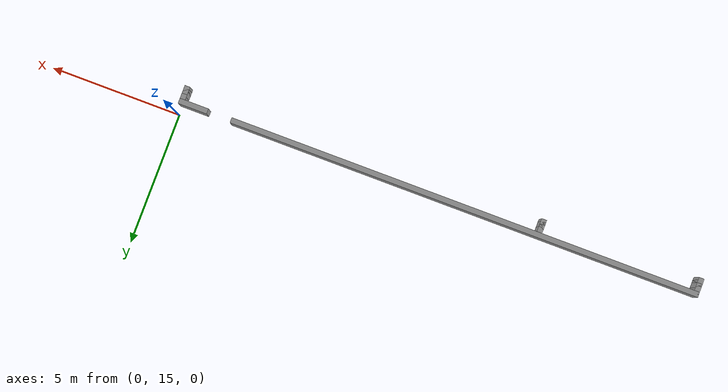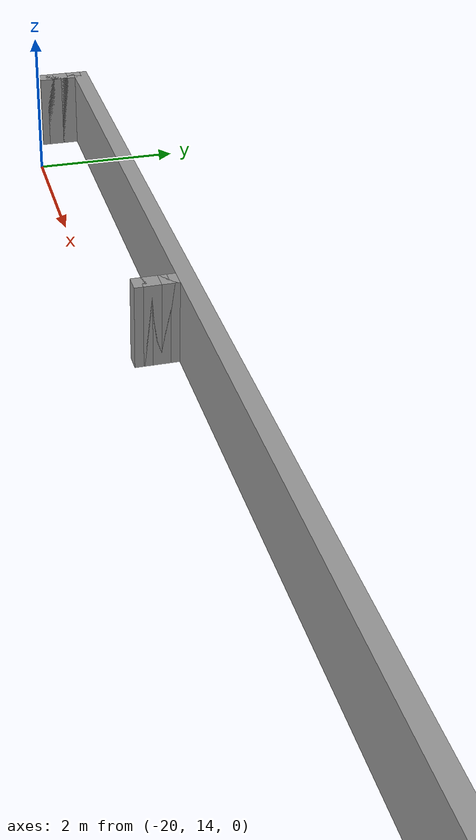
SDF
<sdf version="1.6">
 <world name="GridMap">
  <model name="GridMap">
   <link name="Wall_(1.0,141.0)">
    <collision name="Wall_(1.0,141.0)_Collision">
     <geometry><box><size>0.2 0.2 1.0</size></box></geometry>
     <pose>-0.1 14.1 0.5 0 -0 0</pose>
    </collision>
    <visual name="Wall_(1.0,141.0)_Visual">
     <geometry><box><size>0.2 0.2 1.0</size></box></geometry>
     <pose>-0.1 14.1 0.5 0 -0 0</pose>
     <material>
      <script><uri>file://media/materials/scripts/gazebo.material</uri><name>Gazebo/Grey</name></script>
      <ambient>1 1 1 1</ambient>
     </material>
     <meta><layer>0</layer></meta>
    </visual>
    <pose>0 0 0.5 0 -0 0</pose>
   </link>
   <link name="Wall_(138.0,141.0)">
    <collision name="Wall_(138.0,141.0)_Collision">
     <geometry><box><size>0.2 0.2 1.0</size></box></geometry>
     <pose>-13.8 14.1 0.5 0 -0 0</pose>
    </collision>
    <visual name="Wall_(138.0,141.0)_Visual">
     <geometry><box><size>0.2 0.2 1.0</size></box></geometry>
     <pose>-13.8 14.1 0.5 0 -0 0</pose>
     <material>
      <script><uri>file://media/materials/scripts/gazebo.material</uri><name>Gazebo/Grey</name></script>
      <ambient>1 1 1 1</ambient>
     </material>
     <meta><layer>0</layer></meta>
    </visual>
    <pose>0 0 0.5 0 -0 0</pose>
   </link>
   <link name="Wall_(198.0,141.0)">
    <collision name="Wall_(198.0,141.0)_Collision">
     <geometry><box><size>0.2 0.2 1.0</size></box></geometry>
     <pose>-19.8 14.1 0.5 0 -0 0</pose>
    </collision>
    <visual name="Wall_(198.0,141.0)_Visual">
     <geometry><box><size>0.2 0.2 1.0</size></box></geometry>
     <pose>-19.8 14.1 0.5 0 -0 0</pose>
     <material>
      <script><uri>file://media/materials/scripts/gazebo.material</uri><name>Gazebo/Grey</name></script>
      <ambient>1 1 1 1</ambient>
     </material>
     <meta><layer>0</layer></meta>
    </visual>
    <pose>0 0 0.5 0 -0 0</pose>
   </link>
   <link name="Wall_(1.0,142.0)">
    <collision name="Wall_(1.0,142.0)_Collision">
     <geometry><box><size>0.2 0.2 1.0</size></box></geometry>
     <pose>-0.1 14.2 0.5 0 -0 0</pose>
    </collision>
    <visual name="Wall_(1.0,142.0)_Visual">
     <geometry><box><size>0.2 0.2 1.0</size></box></geometry>
     <pose>-0.1 14.2 0.5 0 -0 0</pose>
     <material>
      <script><uri>file://media/materials/scripts/gazebo.material</uri><name>Gazebo/Grey</name></script>
      <ambient>1 1 1 1</ambient>
     </material>
     <meta><layer>0</layer></meta>
    </visual>
    <pose>0 0 0.5 0 -0 0</pose>
   </link>
   <link name="Wall_(138.0,142.0)">
    <collision name="Wall_(138.0,142.0)_Collision">
     <geometry><box><size>0.2 0.2 1.0</size></box></geometry>
     <pose>-13.8 14.2 0.5 0 -0 0</pose>
    </collision>
    <visual name="Wall_(138.0,142.0)_Visual">
     <geometry><box><size>0.2 0.2 1.0</size></box></geometry>
     <pose>-13.8 14.2 0.5 0 -0 0</pose>
     <material>
      <script><uri>file://media/materials/scripts/gazebo.material</uri><name>Gazebo/Grey</name></script>
      <ambient>1 1 1 1</ambient>
     </material>
     <meta><layer>0</layer></meta>
    </visual>
    <pose>0 0 0.5 0 -0 0</pose>
   </link>
   <link name="Wall_(198.0,142.0)">
    <collision name="Wall_(198.0,142.0)_Collision">
     <geometry><box><size>0.2 0.2 1.0</size></box></geometry>
     <pose>-19.8 14.2 0.5 0 -0 0</pose>
    </collision>
    <visual name="Wall_(198.0,142.0)_Visual">
     <geometry><box><size>0.2 0.2 1.0</size></box></geometry>
     <pose>-19.8 14.2 0.5 0 -0 0</pose>
     <material>
      <script><uri>file://media/materials/scripts/gazebo.material</uri><name>Gazebo/Grey</name></script>
      <ambient>1 1 1 1</ambient>
     </material>
     <meta><layer>0</layer></meta>
    </visual>
    <pose>0 0 0.5 0 -0 0</pose>
   </link>
   <link name="Wall_(1.0,143.0)">
    <collision name="Wall_(1.0,143.0)_Collision">
     <geometry><box><size>0.2 0.2 1.0</size></box></geometry>
     <pose>-0.1 14.3 0.5 0 -0 0</pose>
    </collision>
    <visual name="Wall_(1.0,143.0)_Visual">
     <geometry><box><size>0.2 0.2 1.0</size></box></geometry>
     <pose>-0.1 14.3 0.5 0 -0 0</pose>
     <material>
      <script><uri>file://media/materials/scripts/gazebo.material</uri><name>Gazebo/Grey</name></script>
      <ambient>1 1 1 1</ambient>
     </material>
     <meta><layer>0</layer></meta>
    </visual>
    <pose>0 0 0.5 0 -0 0</pose>
   </link>
   <link name="Wall_(138.0,143.0)">
    <collision name="Wall_(138.0,143.0)_Collision">
     <geometry><box><size>0.2 0.2 1.0</size></box></geometry>
     <pose>-13.8 14.3 0.5 0 -0 0</pose>
    </collision>
    <visual name="Wall_(138.0,143.0)_Visual">
     <geometry><box><size>0.2 0.2 1.0</size></box></geometry>
     <pose>-13.8 14.3 0.5 0 -0 0</pose>
     <material>
      <script><uri>file://media/materials/scripts/gazebo.material</uri><name>Gazebo/Grey</name></script>
      <ambient>1 1 1 1</ambient>
     </material>
     <meta><layer>0</layer></meta>
    </visual>
    <pose>0 0 0.5 0 -0 0</pose>
   </link>
   <link name="Wall_(198.0,143.0)">
    <collision name="Wall_(198.0,143.0)_Collision">
     <geometry><box><size>0.2 0.2 1.0</size></box></geometry>
     <pose>-19.8 14.3 0.5 0 -0 0</pose>
    </collision>
    <visual name="Wall_(198.0,143.0)_Visual">
     <geometry><box><size>0.2 0.2 1.0</size></box></geometry>
     <pose>-19.8 14.3 0.5 0 -0 0</pose>
     <material>
      <script><uri>file://media/materials/scripts/gazebo.material</uri><name>Gazebo/Grey</name></script>
      <ambient>1 1 1 1</ambient>
     </material>
     <meta><layer>0</layer></meta>
    </visual>
    <pose>0 0 0.5 0 -0 0</pose>
   </link>
   <link name="Wall_(1.0,144.0)">
    <collision name="Wall_(1.0,144.0)_Collision">
     <geometry><box><size>0.2 0.2 1.0</size></box></geometry>
     <pose>-0.1 14.4 0.5 0 -0 0</pose>
    </collision>
    <visual name="Wall_(1.0,144.0)_Visual">
     <geometry><box><size>0.2 0.2 1.0</size></box></geometry>
     <pose>-0.1 14.4 0.5 0 -0 0</pose>
     <material>
      <script><uri>file://media/materials/scripts/gazebo.material</uri><name>Gazebo/Grey</name></script>
      <ambient>1 1 1 1</ambient>
     </material>
     <meta><layer>0</layer></meta>
    </visual>
    <pose>0 0 0.5 0 -0 0</pose>
   </link>
   <link name="Wall_(138.0,144.0)">
    <collision name="Wall_(138.0,144.0)_Collision">
     <geometry><box><size>0.2 0.2 1.0</size></box></geometry>
     <pose>-13.8 14.4 0.5 0 -0 0</pose>
    </collision>
    <visual name="Wall_(138.0,144.0)_Visual">
     <geometry><box><size>0.2 0.2 1.0</size></box></geometry>
     <pose>-13.8 14.4 0.5 0 -0 0</pose>
     <material>
      <script><uri>file://media/materials/scripts/gazebo.material</uri><name>Gazebo/Grey</name></script>
      <ambient>1 1 1 1</ambient>
     </material>
     <meta><layer>0</layer></meta>
    </visual>
    <pose>0 0 0.5 0 -0 0</pose>
   </link>
   <link name="Wall_(198.0,144.0)">
    <collision name="Wall_(198.0,144.0)_Collision">
     <geometry><box><size>0.2 0.2 1.0</size></box></geometry>
     <pose>-19.8 14.4 0.5 0 -0 0</pose>
    </collision>
    <visual name="Wall_(198.0,144.0)_Visual">
     <geometry><box><size>0.2 0.2 1.0</size></box></geometry>
     <pose>-19.8 14.4 0.5 0 -0 0</pose>
     <material>
      <script><uri>file://media/materials/scripts/gazebo.material</uri><name>Gazebo/Grey</name></script>
      <ambient>1 1 1 1</ambient>
     </material>
     <meta><layer>0</layer></meta>
    </visual>
    <pose>0 0 0.5 0 -0 0</pose>
   </link>
   <link name="Wall_(1.0,145.0)">
    <collision name="Wall_(1.0,145.0)_Collision">
     <geometry><box><size>0.2 0.2 1.0</size></box></geometry>
     <pose>-0.1 14.5 0.5 0 -0 0</pose>
    </collision>
    <visual name="Wall_(1.0,145.0)_Visual">
     <geometry><box><size>0.2 0.2 1.0</size></box></geometry>
     <pose>-0.1 14.5 0.5 0 -0 0</pose>
     <material>
      <script><uri>file://media/materials/scripts/gazebo.material</uri><name>Gazebo/Grey</name></script>
      <ambient>1 1 1 1</ambient>
     </material>
     <meta><layer>0</layer></meta>
    </visual>
    <pose>0 0 0.5 0 -0 0</pose>
   </link>
   <link name="Wall_(138.0,145.0)">
    <collision name="Wall_(138.0,145.0)_Collision">
     <geometry><box><size>0.2 0.2 1.0</size></box></geometry>
     <pose>-13.8 14.5 0.5 0 -0 0</pose>
    </collision>
    <visual name="Wall_(138.0,145.0)_Visual">
     <geometry><box><size>0.2 0.2 1.0</size></box></geometry>
     <pose>-13.8 14.5 0.5 0 -0 0</pose>
     <material>
      <script><uri>file://media/materials/scripts/gazebo.material</uri><name>Gazebo/Grey</name></script>
      <ambient>1 1 1 1</ambient>
     </material>
     <meta><layer>0</layer></meta>
    </visual>
    <pose>0 0 0.5 0 -0 0</pose>
   </link>
   <link name="Wall_(198.0,145.0)">
    <collision name="Wall_(198.0,145.0)_Collision">
     <geometry><box><size>0.2 0.2 1.0</size></box></geometry>
     <pose>-19.8 14.5 0.5 0 -0 0</pose>
    </collision>
    <visual name="Wall_(198.0,145.0)_Visual">
     <geometry><box><size>0.2 0.2 1.0</size></box></geometry>
     <pose>-19.8 14.5 0.5 0 -0 0</pose>
     <material>
      <script><uri>file://media/materials/scripts/gazebo.material</uri><name>Gazebo/Grey</name></script>
      <ambient>1 1 1 1</ambient>
     </material>
     <meta><layer>0</layer></meta>
    </visual>
    <pose>0 0 0.5 0 -0 0</pose>
   </link>
   <link name="Wall_(5.5,146.0)">
    <collision name="Wall_(5.5,146.0)_Collision">
     <geometry><box><size>1.1 0.2 1.0</size></box></geometry>
     <pose>-0.55 14.6 0.5 0 -0 0</pose>
    </collision>
    <visual name="Wall_(5.5,146.0)_Visual">
     <geometry><box><size>1.1 0.2 1.0</size></box></geometry>
     <pose>-0.55 14.6 0.5 0 -0 0</pose>
     <material>
      <script><uri>file://media/materials/scripts/gazebo.material</uri><name>Gazebo/Grey</name></script>
      <ambient>1 1 1 1</ambient>
     </material>
     <meta><layer>0</layer></meta>
    </visual>
    <pose>0 0 0.5 0 -0 0</pose>
   </link>
   <link name="Wall_(109.5,146.0)">
    <collision name="Wall_(109.5,146.0)_Collision">
     <geometry><box><size>17.9 0.2 1.0</size></box></geometry>
     <pose>-10.95 14.6 0.5 0 -0 0</pose>
    </collision>
    <visual name="Wall_(109.5,146.0)_Visual">
     <geometry><box><size>17.9 0.2 1.0</size></box></geometry>
     <pose>-10.95 14.6 0.5 0 -0 0</pose>
     <material>
      <script><uri>file://media/materials/scripts/gazebo.material</uri><name>Gazebo/Grey</name></script>
      <ambient>1 1 1 1</ambient>
     </material>
     <meta><layer>0</layer></meta>
    </visual>
    <pose>0 0 0.5 0 -0 0</pose>
   </link>
   <static>1</static>
  </model>
 </world>
</sdf>
